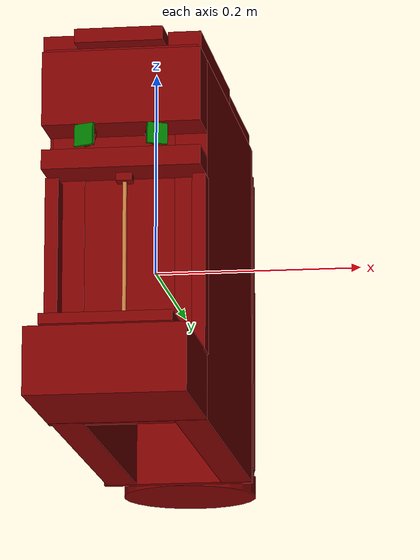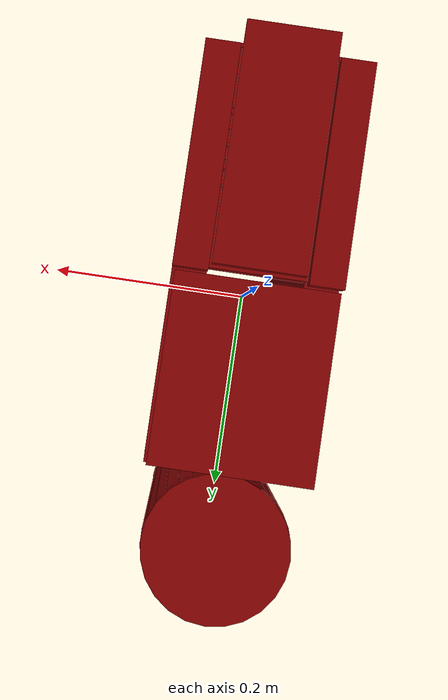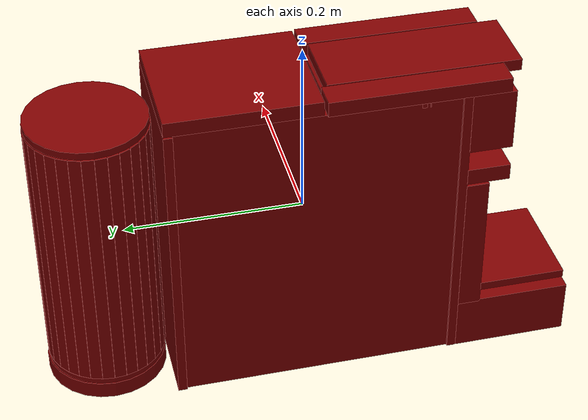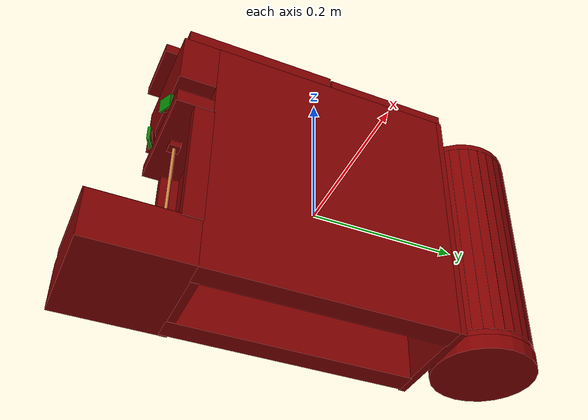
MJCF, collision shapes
<?xml version='1.0' encoding='UTF-8'?>
<mujoco model="model">
  <compiler angle="radian"/>
  <asset>
    <mesh file="visuals/Body001.obj" name="Body001_vis"/>
    <mesh file="visuals/Button001.obj" name="Button001_vis"/>
    <mesh file="visuals/Button002.obj" name="Button002_vis"/>
    <mesh file="visuals/Container001_Clear.obj" name="Container001_Clear_vis"/>
    <mesh file="visuals/Lid001.obj" name="Lid001_vis"/>
    <mesh file="visuals/Lid002.obj" name="Lid002_vis"/>
    <mesh file="visuals/Lid003.obj" name="Lid003_vis"/>
    <texture file="visuals/T_BC001.png" name="Body001_material" type="2d"/>
    <material name="Body001_material" rgba="1 1 1 1.0" texture="Body001_material" shininess="0.44721364974975586" specular="0.3103448502657381"/>
    <texture file="visuals/T_BC001.png" name="Button001_material" type="2d"/>
    <material name="Button001_material" rgba="1 1 1 1.0" texture="Button001_material" shininess="0.44721364974975586" specular="0.3103448502657381"/>
    <texture file="visuals/T_BC001.png" name="Button002_material" type="2d"/>
    <material name="Button002_material" rgba="1 1 1 1.0" texture="Button002_material" shininess="0.44721364974975586" specular="0.3103448502657381"/>
    <texture file="visuals/T_BC001.png" name="Container001_Clear_material" type="2d"/>
    <material name="Container001_Clear_material" rgba="1 1 1 0.044025152921676636" texture="Container001_Clear_material" shininess="0.5" specular="0.3103448502657381"/>
    <texture file="visuals/T_BC001.png" name="Lid002_material" type="2d"/>
    <material name="Lid002_material" rgba="1 1 1 1.0" texture="Lid002_material" shininess="0.44721364974975586" specular="0.3103448502657381"/>
    <texture file="visuals/T_BC001.png" name="Lid001_material" type="2d"/>
    <material name="Lid001_material" rgba="1 1 1 1.0" texture="Lid001_material" shininess="0.44721364974975586" specular="0.3103448502657381"/>
    <texture file="visuals/T_BC001.png" name="Lid003_material" type="2d"/>
    <material name="Lid003_material" rgba="1 1 1 1.0" texture="Lid003_material" shininess="0.44721364974975586" specular="0.3103448502657381"/>
  </asset>
  <default>
    <default class="visual">
      <geom conaffinity="0" contype="0" group="1" type="mesh"/>
    </default>
    <default class="collision">
      <geom group="0" rgba="0.5 0 0 0.5"/>
    </default>
    <default class="spawn">
      <geom group="0" rgba="1 1 1 0.5" contype="0" conaffinity="0"/>
      <site group="0" rgba="1 1 1 0.5"/>
    </default>
    <default class="region">
      <geom group="1" conaffinity="0" contype="0" rgba="0 1 0 0"/>
    </default>
  </default>
  <worldbody>
    <body>
      <body name="object">
        <geom class="collision" type="box" pos="-0.033972710371017456 -0.2172088474035263 0.08230337500572205" size="0.010257767513394356 0.010257766582071781 0.0018072945531457663" quat="0.6905943751335144 -0.6878758072853088 0.16679157316684723 -0.1486164927482605" name="start_button_1" rgba="0.0 0.5 0 0.5"/>
        <geom class="collision" type="box" pos="0.033820219337940216 -0.21636803448200226 0.08145463466644287" size="0.009793621487915516 0.009793623350560665 0.0017255180282518268" quat="0.694786548614502 -0.6844733357429504 -0.14836309850215912 0.16357365250587463" name="start_button_2" rgba="0.0 0.5 0 0.5"/>
        <site type="cylinder" rgba="0.8 0.5 0.25 1" size="0.0020547579042613506 0.10563929378986359" pos="0.0 -0.19157768785953522 -0.06250284612178802" name="coffee_liquid"/>
        <site rgba="0 0 0 0" size="0.010079912841320038 0.010079912841320038" pos="0.0 -0.19181786477565765 -0.10921411216259003" name="receptacle_place_site"/>
        <geom mesh="Body001_vis" type="mesh" solimp="0.998 0.998 0.001" solref="0.001 1" density="100" friction="0.95 0.3 0.1" class="visual" material="Body001_material"/>
        <geom class="collision" type="box" pos="-0.0010248273611068726 -0.15928101539611816 -0.006899850443005562" size="0.0743662491440773 0.0049914526753127575 0.1719028353691101" quat="1.0 0.0 0.0 0.0"/>
        <geom class="collision" type="box" pos="-0.0010248273611068726 -0.18831558525562286 0.1294258087873459" size="0.07436628639698029 0.023978767916560173 0.035349320620298386" quat="1.0 0.0 0.0 0.0"/>
        <geom class="collision" type="box" pos="-0.0010248273611068726 -0.22982704639434814 -0.14680221676826477" size="0.07436633110046387 0.06548980623483658 0.03171851858496666" quat="1.0 0.0 0.0 0.0"/>
        <geom class="collision" type="cylinder" pos="0.0003619306080508977 0.23045387864112854 -0.16935458779335022" size="0.06715035438537598 0.009803780354559422" quat="1.0 0.0 0.0 0.0"/>
        <geom class="collision" type="box" pos="-0.0010248273611068726 0.0778886154294014 0.17084607481956482" size="0.07143214344978333 0.0833515003323555 0.010654096491634846" quat="1.0 0.0 0.0 0.0"/>
        <geom class="collision" type="box" pos="0.05785723775625229 -0.10756227374076843 0.1729290783405304" size="0.015433059073984623 0.09870890527963638 0.008439350873231888" quat="1.0 0.0 0.0 0.0"/>
        <geom class="collision" type="box" pos="-0.05976239964365959 -0.10756227374076843 0.1729290783405304" size="0.015433068387210369 0.09870894253253937 0.008439355529844761" quat="1.0 0.0 0.0 0.0"/>
        <geom class="collision" type="box" pos="-0.06925616413354874 -0.1771404892206192 -0.03412792831659317" size="0.006135501898825169 0.012803744524717331 0.08343489468097687" quat="1.0 0.0 0.0 0.0"/>
        <geom class="collision" type="box" pos="0.06879546493291855 -0.1771404892206192 -0.03412792831659317" size="0.006135504227131605 0.012803752906620502 0.08343493193387985" quat="1.0 0.0 0.0 0.0"/>
        <geom class="collision" type="box" pos="-5.519774276763201e-05 -0.19179615378379822 0.04613257572054863" size="0.007336142472922802 0.007336142472922802 0.0037475007120519876" quat="1.0 0.0 0.0 0.0"/>
        <geom class="collision" type="box" pos="-0.0010248273611068726 0.15656524896621704 -0.006899850443005562" size="0.07436651736497879 0.004991482011973858 0.17190337181091309" quat="1.0 0.0 0.0 0.0"/>
        <geom class="collision" type="box" pos="-0.057466235011816025 -0.005839457269757986 -0.006899850443005562" size="0.01523696817457676 0.15943802893161774 0.17190377414226532" quat="1.0 0.0 0.0 0.0"/>
        <geom class="collision" type="box" pos="0.05825689062476158 -0.0058394321240484715 -0.006899850443005562" size="0.01523696817457676 0.15943795442581177 0.17190377414226532" quat="1.0 0.0 0.0 0.0"/>
        <geom class="collision" type="box" pos="-0.0010248273611068726 -0.18028058111667633 0.15762312710285187" size="0.07143247872591019 0.026883376762270927 0.010654096491634846" quat="1.0 0.0 0.0 0.0"/>
        <geom class="collision" type="box" pos="-0.0010248273611068726 -0.15068411827087402 0.13206550478935242" size="0.006660216487944126 0.002296114806085825 0.03521042317152023" quat="1.0 0.0 0.0 0.0"/>
        <geom class="collision" type="box" pos="-0.013580141589045525 -0.14849673211574554 0.13206550478935242" size="0.006660216487944126 0.002296114806085825 0.0352105088531971" quat="0.9851607084274292 0.0 -0.0 -0.1716344803571701"/>
        <geom class="collision" type="box" pos="-0.024656018242239952 -0.1421923190355301 0.13206550478935242" size="0.006660216487944126 0.002296114806085825 0.0352105088531971" quat="0.9410831928253174 0.0 -0.0 -0.33817508816719055"/>
        <geom class="collision" type="box" pos="-0.032947346568107605 -0.13251376152038574 0.13206550478935242" size="0.006660216487944126 0.002296114806085825 0.0352105088531971" quat="0.8690757155418396 0.0 -0.0 -0.49467912316322327"/>
        <geom class="collision" type="box" pos="-0.037972062826156616 -0.12069716304540634 0.13206550478935242" size="0.006660216487944126 0.002296114806085825 0.0352105088531971" quat="0.7712752223014832 0.0 -0.0 -0.6365017890930176"/>
        <geom class="collision" type="box" pos="-0.0380435436964035 -0.10780768096446991 0.13206550478935242" size="0.006660216487944126 0.002296114806085825 0.0352105088531971" quat="0.6505842208862305 0.0 -0.0 -0.7594341039657593"/>
        <geom class="collision" type="box" pos="-0.034155555069446564 -0.09549820423126221 0.13206550478935242" size="0.006660216487944126 0.002296114806085825 0.0352105088531971" quat="0.5105851292610168 0.0 -0.0 -0.8598272204399109"/>
        <geom class="collision" type="box" pos="-0.02646409347653389 -0.08494465053081512 0.13206550478935242" size="0.006660216487944126 0.002296114806085825 0.0352105088531971" quat="0.35543233156204224 0.0 -0.0 -0.9347020387649536"/>
        <geom class="collision" type="box" pos="-0.015297607518732548 -0.07800644636154175 0.13206550478935242" size="0.0066602169536054134 0.0022961150389164686 0.0352105088531971" quat="0.18973083794116974 0.0 -0.0 -0.9818361401557922"/>
        <geom class="collision" type="box" pos="-0.0024363184347748756 -0.0752178430557251 0.13206550478935242" size="0.006740183103829622 0.002539593493565917 0.035210441797971725" quat="1.0 0.0 0.0 0.0"/>
        <geom class="collision" type="box" pos="0.010394386947154999 -0.07768405973911285 0.13206550478935242" size="0.006660216487944126 0.002296114806085825 0.0352105088531971" quat="0.15348012745380402 0.0 0.0 0.9881517291069031"/>
        <geom class="collision" type="box" pos="0.022099647670984268 -0.08333708345890045 0.13206550478935242" size="0.006660216487944126 0.002296114806085825 0.0352105088531971" quat="0.3208034336566925 0.0 0.0 0.9471458196640015"/>
        <geom class="collision" type="box" pos="0.03080092929303646 -0.09303832054138184 0.13206550478935242" size="0.006660216487944126 0.002296114806085825 0.0352105088531971" quat="0.4786059260368347 0.0 0.0 0.8780298233032227"/>
        <geom class="collision" type="box" pos="0.03550374507904053 -0.10509361326694489 0.13206550478935242" size="0.006660216487944126 0.002296114806085825 0.0352105088531971" quat="0.622204065322876 0.0 0.0 0.7828550934791565"/>
        <geom class="collision" type="box" pos="0.03584675490856171 -0.11790208518505096 0.13206550478935242" size="0.006660216487944126 0.002296114806085825 0.0352105088531971" quat="0.7473360300064087 0.0 0.0 0.6644462943077087"/>
        <geom class="collision" type="box" pos="0.032205142080783844 -0.13011518120765686 0.13206550478935242" size="0.006660216487944126 0.002296114806085825 0.0352105088531971" quat="0.8502879738807678 0.0 0.0 0.5263177156448364"/>
        <geom class="collision" type="box" pos="0.024647915735840797 -0.1403772085905075 0.13206550478935242" size="0.006660216487944126 0.002296114806085825 0.0352105088531971" quat="0.9280046820640564 0.0 0.0 0.3725685477256775"/>
        <geom class="collision" type="box" pos="0.01406557485461235 -0.14747895300388336 0.13206550478935242" size="0.006660216487944126 0.002296114806085825 0.0352105088531971" quat="0.978179395198822 0.0 0.0 0.20776212215423584"/>
        <geom class="collision" type="box" pos="0.0017050743335857987 -0.15058360993862152 0.13206550478935242" size="0.006660216487944126 0.002296114806085825 0.0352105088531971" quat="0.9993230104446411 0.0 0.0 0.036789607256650925"/>
        <geom class="collision" type="cylinder" pos="0.00018449734488967806 -0.11330080032348633 0.09491579979658127" size="0.035588137805461884 0.0061948043294250965" quat="1.0 0.0 0.0 0.0"/>
        <geom class="collision" type="box" pos="0.036997586488723755 -0.15385611355304718 0.1627226620912552" size="0.00759233720600605 0.0160665363073349 0.00491512892767787" quat="0.9312795400619507 0.0 0.0 0.3643054664134979"/>
        <geom class="collision" type="box" pos="0.04617907106876373 -0.14277337491512299 0.1627226620912552" size="0.00759233720600605 0.0160665363073349 0.00491512892767787" quat="0.8764225840568542 0.0 0.0 0.48154282569885254"/>
        <geom class="collision" type="box" pos="0.05221516266465187 -0.1297084391117096 0.1627226620912552" size="0.00759233720600605 0.0160665363073349 0.00491512892767787" quat="0.8068820834159851 0.0 0.0 0.5907125473022461"/>
        <geom class="collision" type="box" pos="0.05470304191112518 -0.11553319543600082 0.1627226620912552" size="0.00759233720600605 0.01606653444468975 0.00491512892767787" quat="0.7238231301307678 0.0 0.0 0.6899855732917786"/>
        <geom class="collision" type="box" pos="0.05347668007016182 -0.1011936366558075 0.1627226620912552" size="0.00759233720600605 0.01606653444468975 0.00491512892767787" quat="0.6286373138427734 0.0 0.0 0.7776986360549927"/>
        <geom class="collision" type="box" pos="0.04861791804432869 -0.08764670789241791 0.1627226620912552" size="0.00759233720600605 0.0160665363073349 0.00491512892767787" quat="0.5229194760322571 0.0 0.0 0.8523821234703064"/>
        <geom class="collision" type="box" pos="0.04045099765062332 -0.0757964551448822 0.1627226620912552" size="0.00759233720600605 0.0160665363073349 0.00491512892767787" quat="0.40844056010246277 0.0 0.0 0.9127849340438843"/>
        <geom class="collision" type="box" pos="0.029520945623517036 -0.06643372029066086 0.1627226620912552" size="0.00759233720600605 0.0160665363073349 0.00491512892767787" quat="0.28711870312690735 0.0 0.0 0.957895040512085"/>
        <geom class="collision" type="box" pos="0.016557173803448677 -0.06018330901861191 0.1627226620912552" size="0.00759233720600605 0.0160665363073349 0.00491512892767787" quat="0.16098646819591522 0.0 0.0 0.9869565963745117"/>
        <geom class="collision" type="box" pos="0.002424819627776742 -0.05746234953403473 0.1627226620912552" size="0.00759233720600605 0.01606653444468975 0.00491512892767787" quat="0.03215707838535309 0.0 0.0 0.9994828104972839"/>
        <geom class="collision" type="box" pos="-0.011932997032999992 -0.05845242366194725 0.1627226620912552" size="0.00759233720600605 0.0160665363073349 0.00491512892767787" quat="0.09721110016107559 0.0 -0.0 -0.9952638149261475"/>
        <geom class="collision" type="box" pos="-0.02555811032652855 -0.06308747828006744 0.1627226620912552" size="0.00759233720600605 0.01606653444468975 0.00491512892767787" quat="0.22495068609714508 0.0 -0.0 -0.9743701219558716"/>
        <geom class="collision" type="box" pos="-0.037541233003139496 -0.07105816155672073 0.1627226620912552" size="0.00759233720600605 0.0160665363073349 0.00491512892767787" quat="0.34892135858535767 0.0 -0.0 -0.9371520280838013"/>
        <geom class="collision" type="box" pos="-0.047082673758268356 -0.08183256536722183 0.1627226620912552" size="0.00759233720600605 0.0160665363073349 0.00491512892767787" quat="0.46704623103141785 0.0 -0.0 -0.8842328786849976"/>
        <geom class="collision" type="box" pos="-0.05354570224881172 -0.0946916714310646 0.1627226620912552" size="0.00759233720600605 0.0160665363073349 0.00491512892767787" quat="0.5773463249206543 0.0 -0.0 -0.8164993524551392"/>
        <geom class="collision" type="box" pos="-0.056498996913433075 -0.10877731442451477 0.1627226620912552" size="0.00759233720600605 0.01606653444468975 0.00491512892767787" quat="0.6779735684394836 0.0 -0.0 -0.7350862622261047"/>
        <geom class="collision" type="box" pos="-0.05574546009302139 -0.12314949929714203 0.1627226620912552" size="0.00759233720600605 0.01606653816998005 0.00491512892767787" quat="0.7672421336174011 0.0 -0.0 -0.6413575410842896"/>
        <geom class="collision" type="box" pos="-0.05133537948131561 -0.13684909045696259 0.1627226620912552" size="0.00759233720600605 0.0160665363073349 0.00491512892767787" quat="0.8436563611030579 0.0 -0.0 -0.536883533000946"/>
        <geom class="collision" type="box" pos="-0.043563079088926315 -0.14896182715892792 0.1627226620912552" size="0.00759233720600605 0.0160665363073349 0.00491512892767787" quat="0.9059359431266785 0.0 -0.0 -0.4234147071838379"/>
        <geom class="collision" type="box" pos="-0.03294721618294716 -0.15867939591407776 0.1627226620912552" size="0.00759233720600605 0.0160665363073349 0.00491512892767787" quat="0.9530376195907593 0.0 -0.0 -0.3028518557548523"/>
        <geom class="collision" type="box" pos="-0.020196273922920227 -0.16535326838493347 0.1627226620912552" size="0.00759233720600605 0.0160665363073349 0.00491512892767787" quat="0.9841721057891846 0.0 -0.0 -0.17721523344516754"/>
        <geom class="collision" type="box" pos="-0.006161155179142952 -0.16853807866573334 0.1627226620912552" size="0.00759233720600605 0.01606653816998005 0.00491512892767787" quat="0.9988178610801697 0.0 -0.0 -0.048609428107738495"/>
        <geom class="collision" type="box" pos="0.008221498690545559 -0.1680212765932083 0.1627226620912552" size="0.00759233720600605 0.01606653444468975 0.00491512892767787" quat="0.9967294335365295 0.0 0.0 0.0808110311627388"/>
        <geom class="collision" type="box" pos="0.021991832181811333 -0.16383735835552216 0.1627226620912552" size="0.00759233720600605 0.0160665363073349 0.00491512892767787" quat="0.9779418706893921 0.0 0.0 0.20887719094753265"/>
        <geom class="collision" type="box" pos="0.034230899065732956 -0.156265527009964 0.16274797916412354" size="0.00759233720600605 0.0160665363073349 0.00491512892767787" quat="0.9427699446678162 0.0 0.0 0.33344393968582153"/>
        <geom class="collision" type="box" pos="-0.0010248273611068726 -0.039271771907806396 0.15703599154949188" size="0.07143247872591019 0.026883376762270927 0.010654096491634846" quat="1.0 0.0 0.0 0.0"/>
        <geom class="collision" type="box" pos="-0.0010248273611068726 -0.18831558525562286 0.061385005712509155" size="0.07436628639698029 0.023978767916560173 0.009312253445386887" quat="1.0 0.0 0.0 0.0"/>
        <body name="Button001">
          <joint axis="0.4526619613170624 0.8916821479797363 0.0" pos="-0.033224087208509445 -0.2141311913728714 0.0821162685751915" limited="true" name="Button001_joint" range="0.0 0.0025" type="slide" damping="1" frictionloss="1" armature=".01" stiffness="0.05"/>
          <geom mesh="Button001_vis" type="mesh" solimp="0.998 0.998 0.001" solref="0.001 1" density="100" friction="0.95 0.3 0.1" class="visual" material="Button001_material"/>
          <geom class="collision" type="cylinder" pos="-0.032193366438150406 -0.21352390944957733 0.0822952389717102" size="0.010165580548346043 0.0012382289860397577" quat="0.6905943751335144 -0.6878758072853088 0.16679157316684723 -0.1486164927482605"/>
        </body>
        <body name="Button002">
          <joint axis="-0.39073923230171204 0.9205014705657959 0.0" pos="0.03257399797439575 -0.21373142302036285 0.0818866714835167" limited="true" name="Button002_joint" range="0.0 0.0025" type="slide" damping="1" frictionloss="1" armature=".01" stiffness="0.05"/>
          <geom mesh="Button002_vis" type="mesh" solimp="0.998 0.998 0.001" solref="0.001 1" density="100" friction="0.95 0.3 0.1" class="visual" material="Button002_material"/>
          <geom class="collision" type="cylinder" pos="0.0322573184967041 -0.213028684258461 0.08153404295444489" size="0.00996349100023508 0.0012136133154854178" quat="0.69504314661026 -0.6847565174102783 -0.1471560001373291 0.16238445043563843"/>
        </body>
        <body name="Container001_Clear">
          <joint axis="0.0 0.0 1.0" pos="0.0 0.22985398769378662 -0.006555512547492981" limited="true" name="Container001_Clear_joint" range="0.0 0.15" type="slide" damping="1" frictionloss="1" armature=".01" stiffness="0.05"/>
          <geom mesh="Container001_Clear_vis" type="mesh" solimp="0.998 0.998 0.001" solref="0.001 1" density="100" friction="0.95 0.3 0.1" class="visual" material="Container001_Clear_material"/>
          <geom class="collision" type="box" pos="-0.0022487612441182137 0.2931978702545166 -0.003206297755241394" size="0.006768156308680773 0.003299421863630414 0.1485159546136856" quat="1.0 0.0 0.0 0.0"/>
          <geom class="collision" type="box" pos="0.010448170825839043 0.2923707067966461 -0.003206297755241394" size="0.006660216487944126 0.0030564535409212112 0.1485159546136856" quat="0.08204901963472366 0.0 0.0 0.9966282844543457"/>
          <geom class="collision" type="box" pos="0.02227116748690605 0.2891962230205536 -0.003206297755241394" size="0.006660215090960264 0.0030564535409212112 0.1485159546136856" quat="0.17790848016738892 0.0 0.0 0.9840470552444458"/>
          <geom class="collision" type="box" pos="0.03377627953886986 0.28348857164382935 -0.003206297755241394" size="0.006660216487944126 0.0030564535409212112 0.1485159546136856" quat="0.27668896317481995 0.0 0.0 0.9609595537185669"/>
          <geom class="collision" type="box" pos="0.043894652277231216 0.2755788564682007 -0.003206297755241394" size="0.006660216487944126 0.0030564535409212112 0.1485159546136856" quat="0.37262213230133057 0.0 0.0 0.9279831647872925"/>
          <geom class="collision" type="box" pos="0.05221087485551834 0.2657918632030487 -0.003206297755241394" size="0.006660216487944126 0.0030564535409212112 0.1485159546136856" quat="0.46472078561782837 0.0 0.0 0.8854572772979736"/>
          <geom class="collision" type="box" pos="0.05838349089026451 0.25452935695648193 -0.003206297755241394" size="0.0066602169536054134 0.003056454239413142 0.1485159546136856" quat="0.5520371794700623 0.0 0.0 0.8338195085525513"/>
          <geom class="collision" type="box" pos="0.062159065157175064 0.24225378036499023 -0.003206297755241394" size="0.0066602169536054134 0.003056453075259924 0.1485159546136856" quat="0.6336727142333984 0.0 0.0 0.773601233959198"/>
          <geom class="collision" type="box" pos="0.06338263303041458 0.22946910560131073 -0.003206297755241394" size="0.0030881173443049192 0.0066746920347213745 0.1485159546136856" quat="1.0 0.0 0.0 0.0"/>
          <geom class="collision" type="box" pos="0.06200389564037323 0.2167002409696579 -0.003206297755241394" size="0.006660216487944126 0.003056453075259924 0.1485159546136856" quat="0.7766082882881165 0.0 0.0 0.6299837827682495"/>
          <geom class="collision" type="box" pos="0.058079514652490616 0.2044714093208313 -0.003206297755241394" size="0.006660216487944126 0.0030564535409212112 0.1485159546136856" quat="0.8364374041557312 0.0 0.0 0.5480625033378601"/>
          <geom class="collision" type="box" pos="0.051770586520433426 0.19328470528125763 -0.003206297755241394" size="0.006660216487944126 0.0030564535409212112 0.1485159546136856" quat="0.8876590132713318 0.0 0.0 0.4605013132095337"/>
          <geom class="collision" type="box" pos="0.04333612695336342 0.18359941244125366 -0.003206297755241394" size="0.006660216487944126 0.003056453773751855 0.1485159546136856" quat="0.9297460913658142 0.0 0.0 0.3682013154029846"/>
          <geom class="collision" type="box" pos="0.03312244266271591 0.17581316828727722 -0.003206297755241394" size="0.006660216487944126 0.003056453773751855 0.1485159546136856" quat="0.9622654914855957 0.0 0.0 0.27211228013038635"/>
          <geom class="collision" type="box" pos="0.021548863500356674 0.17024566233158112 -0.003206297755241394" size="0.006660216487944126 0.0030564535409212112 0.1485159546136856" quat="0.9848825931549072 0.0 0.0 0.17322315275669098"/>
          <geom class="collision" type="box" pos="0.009090560488402843 0.16712546348571777 -0.003206297755241394" size="0.006660216487944126 0.0030564535409212112 0.1485159546136856" quat="0.9973646998405457 0.0 0.0 0.07255125790834427"/>
          <geom class="collision" type="box" pos="-0.0037409686483442783 0.1665806770324707 -0.003206297755241394" size="0.006660216487944126 0.0030564535409212112 0.1485159546136856" quat="0.9995832443237305 0.0 -0.0 -0.02886713668704033"/>
          <geom class="collision" type="box" pos="-0.016418907791376114 0.16863368451595306 -0.003206297755241394" size="0.006660216487944126 0.003056453773751855 0.1485159546136856" quat="0.9915155172348022 0.0 -0.0 -0.12998847663402557"/>
          <geom class="collision" type="box" pos="-0.02842274121940136 0.17320017516613007 -0.003206297755241394" size="0.006660216487944126 0.003056453773751855 0.1485159546136856" quat="0.9732444286346436 0.0 -0.0 -0.22977221012115479"/>
          <geom class="collision" type="box" pos="-0.03925963491201401 0.1800926923751831 -0.003206297755241394" size="0.006660216487944126 0.0030564535409212112 0.1485159546136856" quat="0.9449580907821655 0.0 -0.0 -0.32719138264656067"/>
          <geom class="collision" type="box" pos="-0.04848466441035271 0.18902823328971863 -0.003206297755241394" size="0.006660216487944126 0.0030564535409212112 0.1485159546136856" quat="0.9069475531578064 0.0 -0.0 -0.4212435185909271"/>
          <geom class="collision" type="box" pos="-0.055719081312417984 0.1996399313211441 -0.003206297755241394" size="0.006660216487944126 0.0030564535409212112 0.1485159546136856" quat="0.859604001045227 0.0 -0.0 -0.5109608173370361"/>
          <geom class="collision" type="box" pos="-0.060665860772132874 0.21149210631847382 -0.003206297755241394" size="0.006660216487944126 0.003056453773751855 0.1485159546136856" quat="0.8034145832061768 0.0 -0.0 -0.5954200029373169"/>
          <geom class="collision" type="box" pos="-0.06312191486358643 0.22409817576408386 -0.003206297755241394" size="0.006660216487944126 0.0030564535409212112 0.1485159546136856" quat="0.7389574646949768 0.0 -0.0 -0.6737520694732666"/>
          <geom class="collision" type="box" pos="-0.06298640370368958 0.23694054782390594 -0.003206297755241394" size="0.006660216487944126 0.0030564535409212112 0.1485159546136856" quat="0.6668961048126221 0.0 -0.0 -0.7451506853103638"/>
          <geom class="collision" type="box" pos="-0.06026487424969673 0.24949194490909576 -0.003206297755241394" size="0.006660216487944126 0.0030564533080905676 0.1485159546136856" quat="0.5879721641540527 0.0 -0.0 -0.8088811635971069"/>
          <geom class="collision" type="box" pos="-0.055069100111722946 0.26123711466789246 -0.003206297755241394" size="0.006660216487944126 0.003056453773751855 0.1485159546136856" quat="0.5029973983764648 0.0 -0.0 -0.8642879128456116"/>
          <geom class="collision" type="box" pos="-0.04761236160993576 0.27169376611709595 -0.003206297755241394" size="0.00666021415963769 0.0030564535409212112 0.1485159546136856" quat="0.41284650564193726 0.0 -0.0 -0.9108006358146667"/>
          <geom class="collision" type="box" pos="-0.03820083290338516 0.28043267130851746 -0.003206297755241394" size="0.006660216487944126 0.0030564535409212112 0.1485159546136856" quat="0.31844717264175415 0.0 -0.0 -0.9479405879974365"/>
          <geom class="collision" type="box" pos="-0.02722090855240822 0.28709495067596436 -0.003206297755241394" size="0.006660216487944126 0.0030564535409212112 0.1485159546136856" quat="0.22077080607414246 0.0 -0.0 -0.9753257036209106"/>
          <geom class="collision" type="box" pos="-0.015123384073376656 0.29140710830688477 -0.003206297755241394" size="0.006660216487944126 0.0030564535409212112 0.1485159546136856" quat="0.12082259356975555 0.0 -0.0 -0.9926741123199463"/>
          <geom class="collision" type="cylinder" pos="0.00018449734488967806 0.23001950979232788 -0.15510645508766174" size="0.06608204543590546 0.004083031322807074" quat="1.0 0.0 0.0 0.0"/>
          <body name="Lid002">
            <joint axis="0.0 0.0 1.0" pos="0.0 0.2298544943332672 0.14733648300170898" limited="true" name="Lid002_joint" range="0.0 0.15" type="slide" damping="1" frictionloss="1" armature=".01" stiffness="0.05"/>
            <geom mesh="Lid002_vis" type="mesh" solimp="0.998 0.998 0.001" solref="0.001 1" density="100" friction="0.95 0.3 0.1" class="visual" material="Lid002_material"/>
            <geom class="collision" type="cylinder" pos="0.00018449734488967806 0.23001950979232788 0.15044458210468292" size="0.06608204543590546 0.004117049742490053" quat="1.0 0.0 0.0 0.0"/>
          </body>
        </body>
        <body name="Lid001">
          <joint axis="0.0 0.0 1.0" pos="0.0 -0.22912801802158356 -0.11087439209222794" limited="true" name="Lid001_joint" range="0.0 0.1" type="slide" damping="1" frictionloss="1" armature=".01" stiffness="0.05"/>
          <geom mesh="Lid001_vis" type="mesh" solimp="0.998 0.998 0.001" solref="0.001 1" density="100" friction="0.95 0.3 0.1" class="visual" material="Lid001_material"/>
          <geom class="collision" type="box" pos="-0.000596148194745183 -0.23302236199378967 -0.10878430306911469" size="0.06082738935947418 0.06268739700317383 0.004938466940075159" quat="1.0 0.0 0.0 0.0"/>
        </body>
        <body name="Lid003">
          <joint axis="-1.0 0.0 0.0" pos="0.0 -0.014238815754652023 0.17820614576339722" limited="true" name="Lid003_joint" range="0.0 1.5707963267948966" type="hinge" damping="1" frictionloss="1" armature=".01" stiffness="0.05"/>
          <geom mesh="Lid003_vis" type="mesh" solimp="0.998 0.998 0.001" solref="0.001 1" density="100" friction="0.95 0.3 0.1" class="visual" material="Lid003_material"/>
          <geom class="collision" type="box" pos="-0.0009624044178053737 -0.1218167096376419 0.1747584044933319" size="0.04131826013326645 0.10612587630748749 0.006610069423913956" quat="1.0 0.0 0.0 0.0"/>
        </body>
        <geom class="region" name="reg_main" type="box" pos="0.0 0.0 0.0" size="0.07269084453582764 0.29523399472236633 0.17828652262687683"/>
      </body>
    </body>
  </worldbody>
  <actuator>
    <motor name="Button001_joint_actuator" joint="Button001_joint" gear="0.5"/>
    <motor name="Button002_joint_actuator" joint="Button002_joint" gear="0.5"/>
    <motor name="Container001_Clear_joint_actuator" joint="Container001_Clear_joint" gear="30"/>
    <motor name="Lid001_joint_actuator" joint="Lid001_joint" gear="10"/>
    <motor name="Lid003_joint_actuator" joint="Lid003_joint" gear="10"/>
    <motor name="Lid002_joint_actuator" joint="Lid002_joint" gear="10"/>
  </actuator>
</mujoco>
